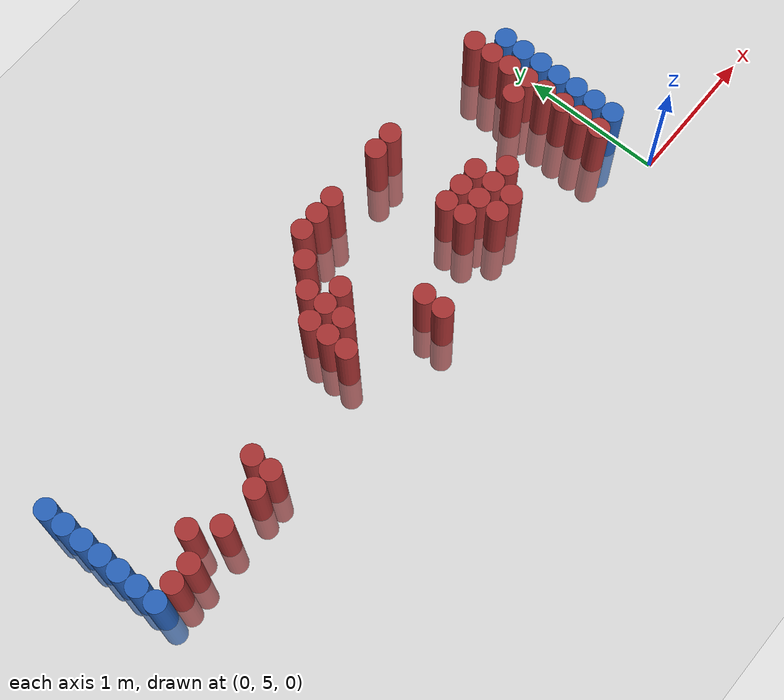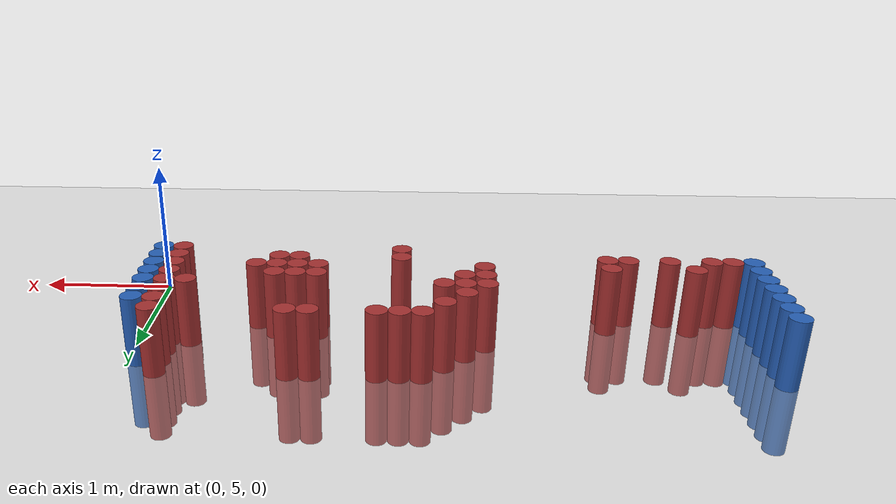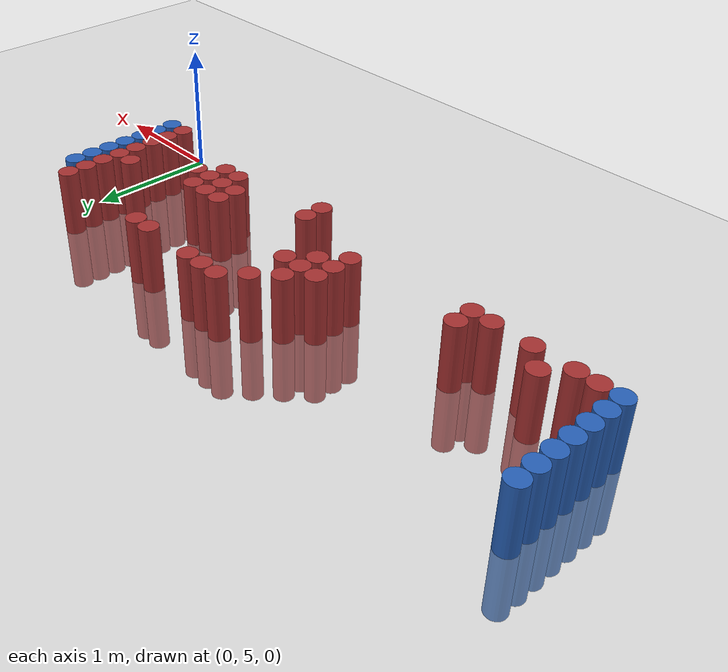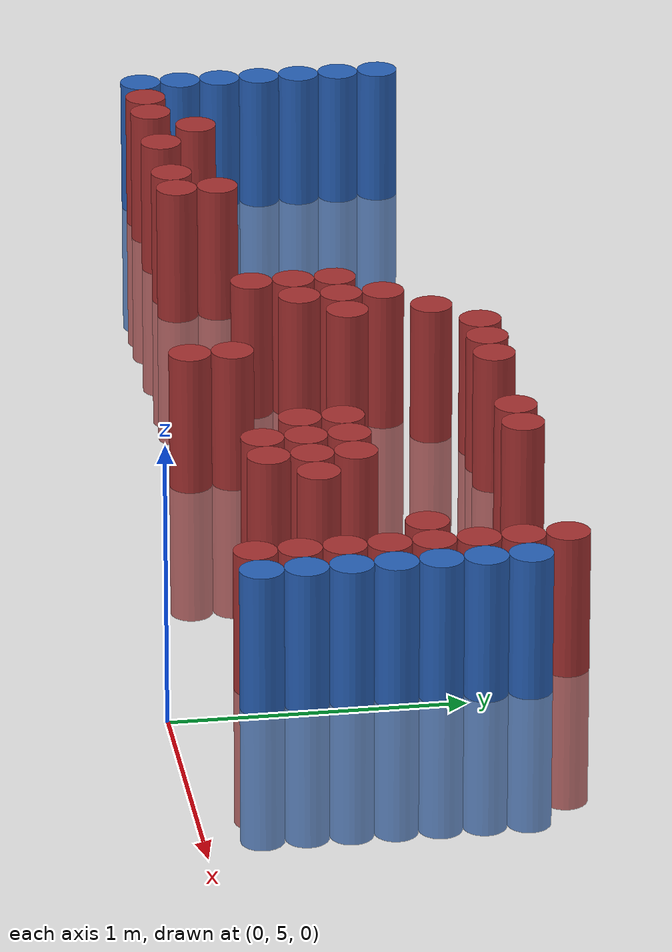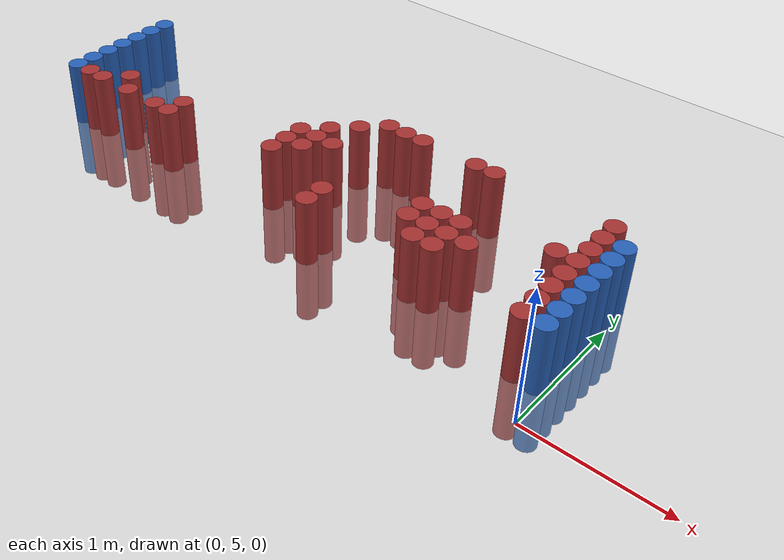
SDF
<sdf version="1.6">
 <world name="default">
  <model name="ground_plane">
   <static>1</static>
   <link name="link">
    <collision name="collision">
     <geometry><plane><normal>0 0 1</normal><size>100 100</size></plane></geometry>
     <surface><friction><ode><mu>100</mu><mu2>50</mu2></ode></friction></surface>
    </collision>
    <visual name="visual">
     <cast_shadows>0</cast_shadows>
     <geometry><plane><normal>0 0 1</normal><size>100 100</size></plane></geometry>
     <material>
      <script><uri>file://media/materials/scripts/gazebo.material</uri><name>Gazebo/Grey</name></script>
     </material>
    </visual>
   </link>
  </model>
  <model name="unit_cylinder_98">
   <static>1</static>
   <pose>-4.425000 5.475000 0.000000 0.000000 0.000000 0.000000</pose>
   <link name="link">
    <inertial>
     <mass>1</mass>
     <inertia><ixx>0.145833</ixx><ixy>0</ixy><ixz>0</ixz><iyy>0.145833</iyy><iyz>0</iyz><izz>0.125</izz></inertia>
    </inertial>
    <collision name="collision">
     <geometry><cylinder><radius>0.075000</radius><length>1</length></cylinder></geometry>
    </collision>
    <visual name="visual">
     <geometry><cylinder><radius>0.075000</radius><length>1</length></cylinder></geometry>
     <material>
      <ambient>0.152000 0.379000 0.720000 1</ambient>
      <diffuse>0.152000 0.379000 0.720000 1</diffuse>
     </material>
     <material>
      <script><name>Gazebo/Grey</name><uri>file://media/materials/scripts/gazebo.material</uri></script>
     </material>
    </visual>
   </link>
  </model>
  <model name="unit_cylinder_99">
   <static>1</static>
   <pose>-4.425000 5.625000 0.000000 0.000000 0.000000 0.000000</pose>
   <link name="link">
    <inertial>
     <mass>1</mass>
     <inertia><ixx>0.145833</ixx><ixy>0</ixy><ixz>0</ixz><iyy>0.145833</iyy><iyz>0</iyz><izz>0.125</izz></inertia>
    </inertial>
    <collision name="collision">
     <geometry><cylinder><radius>0.075000</radius><length>1</length></cylinder></geometry>
    </collision>
    <visual name="visual">
     <geometry><cylinder><radius>0.075000</radius><length>1</length></cylinder></geometry>
     <material>
      <ambient>0.152000 0.379000 0.720000 1</ambient>
      <diffuse>0.152000 0.379000 0.720000 1</diffuse>
     </material>
     <material>
      <script><name>Gazebo/Grey</name><uri>file://media/materials/scripts/gazebo.material</uri></script>
     </material>
    </visual>
   </link>
  </model>
  <model name="unit_cylinder_100">
   <static>1</static>
   <pose>-4.425000 5.775000 0.000000 0.000000 0.000000 0.000000</pose>
   <link name="link">
    <inertial>
     <mass>1</mass>
     <inertia><ixx>0.145833</ixx><ixy>0</ixy><ixz>0</ixz><iyy>0.145833</iyy><iyz>0</iyz><izz>0.125</izz></inertia>
    </inertial>
    <collision name="collision">
     <geometry><cylinder><radius>0.075000</radius><length>1</length></cylinder></geometry>
    </collision>
    <visual name="visual">
     <geometry><cylinder><radius>0.075000</radius><length>1</length></cylinder></geometry>
     <material>
      <ambient>0.152000 0.379000 0.720000 1</ambient>
      <diffuse>0.152000 0.379000 0.720000 1</diffuse>
     </material>
     <material>
      <script><name>Gazebo/Grey</name><uri>file://media/materials/scripts/gazebo.material</uri></script>
     </material>
    </visual>
   </link>
  </model>
  <model name="unit_cylinder_101">
   <static>1</static>
   <pose>-4.425000 5.925000 0.000000 0.000000 0.000000 0.000000</pose>
   <link name="link">
    <inertial>
     <mass>1</mass>
     <inertia><ixx>0.145833</ixx><ixy>0</ixy><ixz>0</ixz><iyy>0.145833</iyy><iyz>0</iyz><izz>0.125</izz></inertia>
    </inertial>
    <collision name="collision">
     <geometry><cylinder><radius>0.075000</radius><length>1</length></cylinder></geometry>
    </collision>
    <visual name="visual">
     <geometry><cylinder><radius>0.075000</radius><length>1</length></cylinder></geometry>
     <material>
      <ambient>0.152000 0.379000 0.720000 1</ambient>
      <diffuse>0.152000 0.379000 0.720000 1</diffuse>
     </material>
     <material>
      <script><name>Gazebo/Grey</name><uri>file://media/materials/scripts/gazebo.material</uri></script>
     </material>
    </visual>
   </link>
  </model>
  <model name="unit_cylinder_102">
   <static>1</static>
   <pose>-4.425000 6.075000 0.000000 0.000000 0.000000 0.000000</pose>
   <link name="link">
    <inertial>
     <mass>1</mass>
     <inertia><ixx>0.145833</ixx><ixy>0</ixy><ixz>0</ixz><iyy>0.145833</iyy><iyz>0</iyz><izz>0.125</izz></inertia>
    </inertial>
    <collision name="collision">
     <geometry><cylinder><radius>0.075000</radius><length>1</length></cylinder></geometry>
    </collision>
    <visual name="visual">
     <geometry><cylinder><radius>0.075000</radius><length>1</length></cylinder></geometry>
     <material>
      <ambient>0.152000 0.379000 0.720000 1</ambient>
      <diffuse>0.152000 0.379000 0.720000 1</diffuse>
     </material>
     <material>
      <script><name>Gazebo/Grey</name><uri>file://media/materials/scripts/gazebo.material</uri></script>
     </material>
    </visual>
   </link>
  </model>
  <model name="unit_cylinder_103">
   <static>1</static>
   <pose>-4.425000 6.225000 0.000000 0.000000 0.000000 0.000000</pose>
   <link name="link">
    <inertial>
     <mass>1</mass>
     <inertia><ixx>0.145833</ixx><ixy>0</ixy><ixz>0</ixz><iyy>0.145833</iyy><iyz>0</iyz><izz>0.125</izz></inertia>
    </inertial>
    <collision name="collision">
     <geometry><cylinder><radius>0.075000</radius><length>1</length></cylinder></geometry>
    </collision>
    <visual name="visual">
     <geometry><cylinder><radius>0.075000</radius><length>1</length></cylinder></geometry>
     <material>
      <ambient>0.152000 0.379000 0.720000 1</ambient>
      <diffuse>0.152000 0.379000 0.720000 1</diffuse>
     </material>
     <material>
      <script><name>Gazebo/Grey</name><uri>file://media/materials/scripts/gazebo.material</uri></script>
     </material>
    </visual>
   </link>
  </model>
  <model name="unit_cylinder_104">
   <static>1</static>
   <pose>-4.425000 6.375000 0.000000 0.000000 0.000000 0.000000</pose>
   <link name="link">
    <inertial>
     <mass>1</mass>
     <inertia><ixx>0.145833</ixx><ixy>0</ixy><ixz>0</ixz><iyy>0.145833</iyy><iyz>0</iyz><izz>0.125</izz></inertia>
    </inertial>
    <collision name="collision">
     <geometry><cylinder><radius>0.075000</radius><length>1</length></cylinder></geometry>
    </collision>
    <visual name="visual">
     <geometry><cylinder><radius>0.075000</radius><length>1</length></cylinder></geometry>
     <material>
      <ambient>0.152000 0.379000 0.720000 1</ambient>
      <diffuse>0.152000 0.379000 0.720000 1</diffuse>
     </material>
     <material>
      <script><name>Gazebo/Grey</name><uri>file://media/materials/scripts/gazebo.material</uri></script>
     </material>
    </visual>
   </link>
  </model>
  <model name="unit_cylinder_128">
   <static>1</static>
   <pose>-4.275000 5.475000 0.000000 0.000000 0.000000 0.000000</pose>
   <link name="link">
    <inertial>
     <mass>1</mass>
     <inertia><ixx>0.145833</ixx><ixy>0</ixy><ixz>0</ixz><iyy>0.145833</iyy><iyz>0</iyz><izz>0.125</izz></inertia>
    </inertial>
    <collision name="collision">
     <geometry><cylinder><radius>0.075000</radius><length>1</length></cylinder></geometry>
    </collision>
    <visual name="visual">
     <geometry><cylinder><radius>0.075000</radius><length>1</length></cylinder></geometry>
     <material>
      <ambient>0.648000 0.192000 0.192000 1</ambient>
      <diffuse>0.648000 0.192000 0.192000 1</diffuse>
     </material>
     <material>
      <script><name>Gazebo/Grey</name><uri>file://media/materials/scripts/gazebo.material</uri></script>
     </material>
    </visual>
   </link>
  </model>
  <model name="unit_cylinder_142">
   <static>1</static>
   <pose>-4.125000 5.475000 0.000000 0.000000 0.000000 0.000000</pose>
   <link name="link">
    <inertial>
     <mass>1</mass>
     <inertia><ixx>0.145833</ixx><ixy>0</ixy><ixz>0</ixz><iyy>0.145833</iyy><iyz>0</iyz><izz>0.125</izz></inertia>
    </inertial>
    <collision name="collision">
     <geometry><cylinder><radius>0.075000</radius><length>1</length></cylinder></geometry>
    </collision>
    <visual name="visual">
     <geometry><cylinder><radius>0.075000</radius><length>1</length></cylinder></geometry>
     <material>
      <ambient>0.648000 0.192000 0.192000 1</ambient>
      <diffuse>0.648000 0.192000 0.192000 1</diffuse>
     </material>
     <material>
      <script><name>Gazebo/Grey</name><uri>file://media/materials/scripts/gazebo.material</uri></script>
     </material>
    </visual>
   </link>
  </model>
  <model name="unit_cylinder_150">
   <static>1</static>
   <pose>-3.975000 5.625000 0.000000 0.000000 0.000000 0.000000</pose>
   <link name="link">
    <inertial>
     <mass>1</mass>
     <inertia><ixx>0.145833</ixx><ixy>0</ixy><ixz>0</ixz><iyy>0.145833</iyy><iyz>0</iyz><izz>0.125</izz></inertia>
    </inertial>
    <collision name="collision">
     <geometry><cylinder><radius>0.075000</radius><length>1</length></cylinder></geometry>
    </collision>
    <visual name="visual">
     <geometry><cylinder><radius>0.075000</radius><length>1</length></cylinder></geometry>
     <material>
      <ambient>0.648000 0.192000 0.192000 1</ambient>
      <diffuse>0.648000 0.192000 0.192000 1</diffuse>
     </material>
     <material>
      <script><name>Gazebo/Grey</name><uri>file://media/materials/scripts/gazebo.material</uri></script>
     </material>
    </visual>
   </link>
  </model>
  <model name="unit_cylinder_155">
   <static>1</static>
   <pose>-3.825000 5.475000 0.000000 0.000000 0.000000 0.000000</pose>
   <link name="link">
    <inertial>
     <mass>1</mass>
     <inertia><ixx>0.145833</ixx><ixy>0</ixy><ixz>0</ixz><iyy>0.145833</iyy><iyz>0</iyz><izz>0.125</izz></inertia>
    </inertial>
    <collision name="collision">
     <geometry><cylinder><radius>0.075000</radius><length>1</length></cylinder></geometry>
    </collision>
    <visual name="visual">
     <geometry><cylinder><radius>0.075000</radius><length>1</length></cylinder></geometry>
     <material>
      <ambient>0.648000 0.192000 0.192000 1</ambient>
      <diffuse>0.648000 0.192000 0.192000 1</diffuse>
     </material>
     <material>
      <script><name>Gazebo/Grey</name><uri>file://media/materials/scripts/gazebo.material</uri></script>
     </material>
    </visual>
   </link>
  </model>
  <model name="unit_cylinder_172">
   <static>1</static>
   <pose>-3.525000 5.475000 0.000000 0.000000 0.000000 0.000000</pose>
   <link name="link">
    <inertial>
     <mass>1</mass>
     <inertia><ixx>0.145833</ixx><ixy>0</ixy><ixz>0</ixz><iyy>0.145833</iyy><iyz>0</iyz><izz>0.125</izz></inertia>
    </inertial>
    <collision name="collision">
     <geometry><cylinder><radius>0.075000</radius><length>1</length></cylinder></geometry>
    </collision>
    <visual name="visual">
     <geometry><cylinder><radius>0.075000</radius><length>1</length></cylinder></geometry>
     <material>
      <ambient>0.648000 0.192000 0.192000 1</ambient>
      <diffuse>0.648000 0.192000 0.192000 1</diffuse>
     </material>
     <material>
      <script><name>Gazebo/Grey</name><uri>file://media/materials/scripts/gazebo.material</uri></script>
     </material>
    </visual>
   </link>
  </model>
  <model name="unit_cylinder_181">
   <static>1</static>
   <pose>-3.375000 5.475000 0.000000 0.000000 0.000000 0.000000</pose>
   <link name="link">
    <inertial>
     <mass>1</mass>
     <inertia><ixx>0.145833</ixx><ixy>0</ixy><ixz>0</ixz><iyy>0.145833</iyy><iyz>0</iyz><izz>0.125</izz></inertia>
    </inertial>
    <collision name="collision">
     <geometry><cylinder><radius>0.075000</radius><length>1</length></cylinder></geometry>
    </collision>
    <visual name="visual">
     <geometry><cylinder><radius>0.075000</radius><length>1</length></cylinder></geometry>
     <material>
      <ambient>0.648000 0.192000 0.192000 1</ambient>
      <diffuse>0.648000 0.192000 0.192000 1</diffuse>
     </material>
     <material>
      <script><name>Gazebo/Grey</name><uri>file://media/materials/scripts/gazebo.material</uri></script>
     </material>
    </visual>
   </link>
  </model>
  <model name="unit_cylinder_182">
   <static>1</static>
   <pose>-3.375000 5.625000 0.000000 0.000000 0.000000 0.000000</pose>
   <link name="link">
    <inertial>
     <mass>1</mass>
     <inertia><ixx>0.145833</ixx><ixy>0</ixy><ixz>0</ixz><iyy>0.145833</iyy><iyz>0</iyz><izz>0.125</izz></inertia>
    </inertial>
    <collision name="collision">
     <geometry><cylinder><radius>0.075000</radius><length>1</length></cylinder></geometry>
    </collision>
    <visual name="visual">
     <geometry><cylinder><radius>0.075000</radius><length>1</length></cylinder></geometry>
     <material>
      <ambient>0.648000 0.192000 0.192000 1</ambient>
      <diffuse>0.648000 0.192000 0.192000 1</diffuse>
     </material>
     <material>
      <script><name>Gazebo/Grey</name><uri>file://media/materials/scripts/gazebo.material</uri></script>
     </material>
    </visual>
   </link>
  </model>
  <model name="unit_cylinder_188">
   <static>1</static>
   <pose>-2.475000 5.625000 0.000000 0.000000 0.000000 0.000000</pose>
   <link name="link">
    <inertial>
     <mass>1</mass>
     <inertia><ixx>0.145833</ixx><ixy>0</ixy><ixz>0</ixz><iyy>0.145833</iyy><iyz>0</iyz><izz>0.125</izz></inertia>
    </inertial>
    <collision name="collision">
     <geometry><cylinder><radius>0.075000</radius><length>1</length></cylinder></geometry>
    </collision>
    <visual name="visual">
     <geometry><cylinder><radius>0.075000</radius><length>1</length></cylinder></geometry>
     <material>
      <ambient>0.648000 0.192000 0.192000 1</ambient>
      <diffuse>0.648000 0.192000 0.192000 1</diffuse>
     </material>
     <material>
      <script><name>Gazebo/Grey</name><uri>file://media/materials/scripts/gazebo.material</uri></script>
     </material>
    </visual>
   </link>
  </model>
  <model name="unit_cylinder_189">
   <static>1</static>
   <pose>-2.475000 5.775000 0.000000 0.000000 0.000000 0.000000</pose>
   <link name="link">
    <inertial>
     <mass>1</mass>
     <inertia><ixx>0.145833</ixx><ixy>0</ixy><ixz>0</ixz><iyy>0.145833</iyy><iyz>0</iyz><izz>0.125</izz></inertia>
    </inertial>
    <collision name="collision">
     <geometry><cylinder><radius>0.075000</radius><length>1</length></cylinder></geometry>
    </collision>
    <visual name="visual">
     <geometry><cylinder><radius>0.075000</radius><length>1</length></cylinder></geometry>
     <material>
      <ambient>0.648000 0.192000 0.192000 1</ambient>
      <diffuse>0.648000 0.192000 0.192000 1</diffuse>
     </material>
     <material>
      <script><name>Gazebo/Grey</name><uri>file://media/materials/scripts/gazebo.material</uri></script>
     </material>
    </visual>
   </link>
  </model>
  <model name="unit_cylinder_190">
   <static>1</static>
   <pose>-2.475000 5.925000 0.000000 0.000000 0.000000 0.000000</pose>
   <link name="link">
    <inertial>
     <mass>1</mass>
     <inertia><ixx>0.145833</ixx><ixy>0</ixy><ixz>0</ixz><iyy>0.145833</iyy><iyz>0</iyz><izz>0.125</izz></inertia>
    </inertial>
    <collision name="collision">
     <geometry><cylinder><radius>0.075000</radius><length>1</length></cylinder></geometry>
    </collision>
    <visual name="visual">
     <geometry><cylinder><radius>0.075000</radius><length>1</length></cylinder></geometry>
     <material>
      <ambient>0.648000 0.192000 0.192000 1</ambient>
      <diffuse>0.648000 0.192000 0.192000 1</diffuse>
     </material>
     <material>
      <script><name>Gazebo/Grey</name><uri>file://media/materials/scripts/gazebo.material</uri></script>
     </material>
    </visual>
   </link>
  </model>
  <model name="unit_cylinder_191">
   <static>1</static>
   <pose>-2.325000 5.775000 0.000000 0.000000 0.000000 0.000000</pose>
   <link name="link">
    <inertial>
     <mass>1</mass>
     <inertia><ixx>0.145833</ixx><ixy>0</ixy><ixz>0</ixz><iyy>0.145833</iyy><iyz>0</iyz><izz>0.125</izz></inertia>
    </inertial>
    <collision name="collision">
     <geometry><cylinder><radius>0.075000</radius><length>1</length></cylinder></geometry>
    </collision>
    <visual name="visual">
     <geometry><cylinder><radius>0.075000</radius><length>1</length></cylinder></geometry>
     <material>
      <ambient>0.648000 0.192000 0.192000 1</ambient>
      <diffuse>0.648000 0.192000 0.192000 1</diffuse>
     </material>
     <material>
      <script><name>Gazebo/Grey</name><uri>file://media/materials/scripts/gazebo.material</uri></script>
     </material>
    </visual>
   </link>
  </model>
  <model name="unit_cylinder_192">
   <static>1</static>
   <pose>-2.325000 5.925000 0.000000 0.000000 0.000000 0.000000</pose>
   <link name="link">
    <inertial>
     <mass>1</mass>
     <inertia><ixx>0.145833</ixx><ixy>0</ixy><ixz>0</ixz><iyy>0.145833</iyy><iyz>0</iyz><izz>0.125</izz></inertia>
    </inertial>
    <collision name="collision">
     <geometry><cylinder><radius>0.075000</radius><length>1</length></cylinder></geometry>
    </collision>
    <visual name="visual">
     <geometry><cylinder><radius>0.075000</radius><length>1</length></cylinder></geometry>
     <material>
      <ambient>0.648000 0.192000 0.192000 1</ambient>
      <diffuse>0.648000 0.192000 0.192000 1</diffuse>
     </material>
     <material>
      <script><name>Gazebo/Grey</name><uri>file://media/materials/scripts/gazebo.material</uri></script>
     </material>
    </visual>
   </link>
  </model>
  <model name="unit_cylinder_193">
   <static>1</static>
   <pose>-2.325000 6.075000 0.000000 0.000000 0.000000 0.000000</pose>
   <link name="link">
    <inertial>
     <mass>1</mass>
     <inertia><ixx>0.145833</ixx><ixy>0</ixy><ixz>0</ixz><iyy>0.145833</iyy><iyz>0</iyz><izz>0.125</izz></inertia>
    </inertial>
    <collision name="collision">
     <geometry><cylinder><radius>0.075000</radius><length>1</length></cylinder></geometry>
    </collision>
    <visual name="visual">
     <geometry><cylinder><radius>0.075000</radius><length>1</length></cylinder></geometry>
     <material>
      <ambient>0.648000 0.192000 0.192000 1</ambient>
      <diffuse>0.648000 0.192000 0.192000 1</diffuse>
     </material>
     <material>
      <script><name>Gazebo/Grey</name><uri>file://media/materials/scripts/gazebo.material</uri></script>
     </material>
    </visual>
   </link>
  </model>
  <model name="unit_cylinder_195">
   <static>1</static>
   <pose>-2.175000 5.925000 0.000000 0.000000 0.000000 0.000000</pose>
   <link name="link">
    <inertial>
     <mass>1</mass>
     <inertia><ixx>0.145833</ixx><ixy>0</ixy><ixz>0</ixz><iyy>0.145833</iyy><iyz>0</iyz><izz>0.125</izz></inertia>
    </inertial>
    <collision name="collision">
     <geometry><cylinder><radius>0.075000</radius><length>1</length></cylinder></geometry>
    </collision>
    <visual name="visual">
     <geometry><cylinder><radius>0.075000</radius><length>1</length></cylinder></geometry>
     <material>
      <ambient>0.648000 0.192000 0.192000 1</ambient>
      <diffuse>0.648000 0.192000 0.192000 1</diffuse>
     </material>
     <material>
      <script><name>Gazebo/Grey</name><uri>file://media/materials/scripts/gazebo.material</uri></script>
     </material>
    </visual>
   </link>
  </model>
  <model name="unit_cylinder_196">
   <static>1</static>
   <pose>-2.175000 6.225000 0.000000 0.000000 0.000000 0.000000</pose>
   <link name="link">
    <inertial>
     <mass>1</mass>
     <inertia><ixx>0.145833</ixx><ixy>0</ixy><ixz>0</ixz><iyy>0.145833</iyy><iyz>0</iyz><izz>0.125</izz></inertia>
    </inertial>
    <collision name="collision">
     <geometry><cylinder><radius>0.075000</radius><length>1</length></cylinder></geometry>
    </collision>
    <visual name="visual">
     <geometry><cylinder><radius>0.075000</radius><length>1</length></cylinder></geometry>
     <material>
      <ambient>0.648000 0.192000 0.192000 1</ambient>
      <diffuse>0.648000 0.192000 0.192000 1</diffuse>
     </material>
     <material>
      <script><name>Gazebo/Grey</name><uri>file://media/materials/scripts/gazebo.material</uri></script>
     </material>
    </visual>
   </link>
  </model>
  <model name="unit_cylinder_203">
   <static>1</static>
   <pose>-2.025000 6.375000 0.000000 0.000000 0.000000 0.000000</pose>
   <link name="link">
    <inertial>
     <mass>1</mass>
     <inertia><ixx>0.145833</ixx><ixy>0</ixy><ixz>0</ixz><iyy>0.145833</iyy><iyz>0</iyz><izz>0.125</izz></inertia>
    </inertial>
    <collision name="collision">
     <geometry><cylinder><radius>0.075000</radius><length>1</length></cylinder></geometry>
    </collision>
    <visual name="visual">
     <geometry><cylinder><radius>0.075000</radius><length>1</length></cylinder></geometry>
     <material>
      <ambient>0.648000 0.192000 0.192000 1</ambient>
      <diffuse>0.648000 0.192000 0.192000 1</diffuse>
     </material>
     <material>
      <script><name>Gazebo/Grey</name><uri>file://media/materials/scripts/gazebo.material</uri></script>
     </material>
    </visual>
   </link>
  </model>
  <model name="unit_cylinder_208">
   <static>1</static>
   <pose>-1.875000 5.325000 0.000000 0.000000 0.000000 0.000000</pose>
   <link name="link">
    <inertial>
     <mass>1</mass>
     <inertia><ixx>0.145833</ixx><ixy>0</ixy><ixz>0</ixz><iyy>0.145833</iyy><iyz>0</iyz><izz>0.125</izz></inertia>
    </inertial>
    <collision name="collision">
     <geometry><cylinder><radius>0.075000</radius><length>1</length></cylinder></geometry>
    </collision>
    <visual name="visual">
     <geometry><cylinder><radius>0.075000</radius><length>1</length></cylinder></geometry>
     <material>
      <ambient>0.648000 0.192000 0.192000 1</ambient>
      <diffuse>0.648000 0.192000 0.192000 1</diffuse>
     </material>
     <material>
      <script><name>Gazebo/Grey</name><uri>file://media/materials/scripts/gazebo.material</uri></script>
     </material>
    </visual>
   </link>
  </model>
  <model name="unit_cylinder_209">
   <static>1</static>
   <pose>-1.875000 5.475000 0.000000 0.000000 0.000000 0.000000</pose>
   <link name="link">
    <inertial>
     <mass>1</mass>
     <inertia><ixx>0.145833</ixx><ixy>0</ixy><ixz>0</ixz><iyy>0.145833</iyy><iyz>0</iyz><izz>0.125</izz></inertia>
    </inertial>
    <collision name="collision">
     <geometry><cylinder><radius>0.075000</radius><length>1</length></cylinder></geometry>
    </collision>
    <visual name="visual">
     <geometry><cylinder><radius>0.075000</radius><length>1</length></cylinder></geometry>
     <material>
      <ambient>0.648000 0.192000 0.192000 1</ambient>
      <diffuse>0.648000 0.192000 0.192000 1</diffuse>
     </material>
     <material>
      <script><name>Gazebo/Grey</name><uri>file://media/materials/scripts/gazebo.material</uri></script>
     </material>
    </visual>
   </link>
  </model>
  <model name="unit_cylinder_210">
   <static>1</static>
   <pose>-1.875000 6.375000 0.000000 0.000000 0.000000 0.000000</pose>
   <link name="link">
    <inertial>
     <mass>1</mass>
     <inertia><ixx>0.145833</ixx><ixy>0</ixy><ixz>0</ixz><iyy>0.145833</iyy><iyz>0</iyz><izz>0.125</izz></inertia>
    </inertial>
    <collision name="collision">
     <geometry><cylinder><radius>0.075000</radius><length>1</length></cylinder></geometry>
    </collision>
    <visual name="visual">
     <geometry><cylinder><radius>0.075000</radius><length>1</length></cylinder></geometry>
     <material>
      <ambient>0.648000 0.192000 0.192000 1</ambient>
      <diffuse>0.648000 0.192000 0.192000 1</diffuse>
     </material>
     <material>
      <script><name>Gazebo/Grey</name><uri>file://media/materials/scripts/gazebo.material</uri></script>
     </material>
    </visual>
   </link>
  </model>
  <model name="unit_cylinder_215">
   <static>1</static>
   <pose>-1.725000 6.375000 0.000000 0.000000 0.000000 0.000000</pose>
   <link name="link">
    <inertial>
     <mass>1</mass>
     <inertia><ixx>0.145833</ixx><ixy>0</ixy><ixz>0</ixz><iyy>0.145833</iyy><iyz>0</iyz><izz>0.125</izz></inertia>
    </inertial>
    <collision name="collision">
     <geometry><cylinder><radius>0.075000</radius><length>1</length></cylinder></geometry>
    </collision>
    <visual name="visual">
     <geometry><cylinder><radius>0.075000</radius><length>1</length></cylinder></geometry>
     <material>
      <ambient>0.648000 0.192000 0.192000 1</ambient>
      <diffuse>0.648000 0.192000 0.192000 1</diffuse>
     </material>
     <material>
      <script><name>Gazebo/Grey</name><uri>file://media/materials/scripts/gazebo.material</uri></script>
     </material>
    </visual>
   </link>
  </model>
  <model name="unit_cylinder_226">
   <static>1</static>
   <pose>-1.275000 5.625000 0.000000 0.000000 0.000000 0.000000</pose>
   <link name="link">
    <inertial>
     <mass>1</mass>
     <inertia><ixx>0.145833</ixx><ixy>0</ixy><ixz>0</ixz><iyy>0.145833</iyy><iyz>0</iyz><izz>0.125</izz></inertia>
    </inertial>
    <collision name="collision">
     <geometry><cylinder><radius>0.075000</radius><length>1</length></cylinder></geometry>
    </collision>
    <visual name="visual">
     <geometry><cylinder><radius>0.075000</radius><length>1</length></cylinder></geometry>
     <material>
      <ambient>0.648000 0.192000 0.192000 1</ambient>
      <diffuse>0.648000 0.192000 0.192000 1</diffuse>
     </material>
     <material>
      <script><name>Gazebo/Grey</name><uri>file://media/materials/scripts/gazebo.material</uri></script>
     </material>
    </visual>
   </link>
  </model>
  <model name="unit_cylinder_227">
   <static>1</static>
   <pose>-1.275000 5.775000 0.000000 0.000000 0.000000 0.000000</pose>
   <link name="link">
    <inertial>
     <mass>1</mass>
     <inertia><ixx>0.145833</ixx><ixy>0</ixy><ixz>0</ixz><iyy>0.145833</iyy><iyz>0</iyz><izz>0.125</izz></inertia>
    </inertial>
    <collision name="collision">
     <geometry><cylinder><radius>0.075000</radius><length>1</length></cylinder></geometry>
    </collision>
    <visual name="visual">
     <geometry><cylinder><radius>0.075000</radius><length>1</length></cylinder></geometry>
     <material>
      <ambient>0.648000 0.192000 0.192000 1</ambient>
      <diffuse>0.648000 0.192000 0.192000 1</diffuse>
     </material>
     <material>
      <script><name>Gazebo/Grey</name><uri>file://media/materials/scripts/gazebo.material</uri></script>
     </material>
    </visual>
   </link>
  </model>
  <model name="unit_cylinder_228">
   <static>1</static>
   <pose>-1.275000 6.375000 0.000000 0.000000 0.000000 0.000000</pose>
   <link name="link">
    <inertial>
     <mass>1</mass>
     <inertia><ixx>0.145833</ixx><ixy>0</ixy><ixz>0</ixz><iyy>0.145833</iyy><iyz>0</iyz><izz>0.125</izz></inertia>
    </inertial>
    <collision name="collision">
     <geometry><cylinder><radius>0.075000</radius><length>1</length></cylinder></geometry>
    </collision>
    <visual name="visual">
     <geometry><cylinder><radius>0.075000</radius><length>1</length></cylinder></geometry>
     <material>
      <ambient>0.648000 0.192000 0.192000 1</ambient>
      <diffuse>0.648000 0.192000 0.192000 1</diffuse>
     </material>
     <material>
      <script><name>Gazebo/Grey</name><uri>file://media/materials/scripts/gazebo.material</uri></script>
     </material>
    </visual>
   </link>
  </model>
  <model name="unit_cylinder_237">
   <static>1</static>
   <pose>-1.125000 5.475000 0.000000 0.000000 0.000000 0.000000</pose>
   <link name="link">
    <inertial>
     <mass>1</mass>
     <inertia><ixx>0.145833</ixx><ixy>0</ixy><ixz>0</ixz><iyy>0.145833</iyy><iyz>0</iyz><izz>0.125</izz></inertia>
    </inertial>
    <collision name="collision">
     <geometry><cylinder><radius>0.075000</radius><length>1</length></cylinder></geometry>
    </collision>
    <visual name="visual">
     <geometry><cylinder><radius>0.075000</radius><length>1</length></cylinder></geometry>
     <material>
      <ambient>0.648000 0.192000 0.192000 1</ambient>
      <diffuse>0.648000 0.192000 0.192000 1</diffuse>
     </material>
     <material>
      <script><name>Gazebo/Grey</name><uri>file://media/materials/scripts/gazebo.material</uri></script>
     </material>
    </visual>
   </link>
  </model>
  <model name="unit_cylinder_238">
   <static>1</static>
   <pose>-1.125000 5.625000 0.000000 0.000000 0.000000 0.000000</pose>
   <link name="link">
    <inertial>
     <mass>1</mass>
     <inertia><ixx>0.145833</ixx><ixy>0</ixy><ixz>0</ixz><iyy>0.145833</iyy><iyz>0</iyz><izz>0.125</izz></inertia>
    </inertial>
    <collision name="collision">
     <geometry><cylinder><radius>0.075000</radius><length>1</length></cylinder></geometry>
    </collision>
    <visual name="visual">
     <geometry><cylinder><radius>0.075000</radius><length>1</length></cylinder></geometry>
     <material>
      <ambient>0.648000 0.192000 0.192000 1</ambient>
      <diffuse>0.648000 0.192000 0.192000 1</diffuse>
     </material>
     <material>
      <script><name>Gazebo/Grey</name><uri>file://media/materials/scripts/gazebo.material</uri></script>
     </material>
    </visual>
   </link>
  </model>
  <model name="unit_cylinder_239">
   <static>1</static>
   <pose>-1.125000 5.775000 0.000000 0.000000 0.000000 0.000000</pose>
   <link name="link">
    <inertial>
     <mass>1</mass>
     <inertia><ixx>0.145833</ixx><ixy>0</ixy><ixz>0</ixz><iyy>0.145833</iyy><iyz>0</iyz><izz>0.125</izz></inertia>
    </inertial>
    <collision name="collision">
     <geometry><cylinder><radius>0.075000</radius><length>1</length></cylinder></geometry>
    </collision>
    <visual name="visual">
     <geometry><cylinder><radius>0.075000</radius><length>1</length></cylinder></geometry>
     <material>
      <ambient>0.648000 0.192000 0.192000 1</ambient>
      <diffuse>0.648000 0.192000 0.192000 1</diffuse>
     </material>
     <material>
      <script><name>Gazebo/Grey</name><uri>file://media/materials/scripts/gazebo.material</uri></script>
     </material>
    </visual>
   </link>
  </model>
  <model name="unit_cylinder_240">
   <static>1</static>
   <pose>-1.125000 6.375000 0.000000 0.000000 0.000000 0.000000</pose>
   <link name="link">
    <inertial>
     <mass>1</mass>
     <inertia><ixx>0.145833</ixx><ixy>0</ixy><ixz>0</ixz><iyy>0.145833</iyy><iyz>0</iyz><izz>0.125</izz></inertia>
    </inertial>
    <collision name="collision">
     <geometry><cylinder><radius>0.075000</radius><length>1</length></cylinder></geometry>
    </collision>
    <visual name="visual">
     <geometry><cylinder><radius>0.075000</radius><length>1</length></cylinder></geometry>
     <material>
      <ambient>0.648000 0.192000 0.192000 1</ambient>
      <diffuse>0.648000 0.192000 0.192000 1</diffuse>
     </material>
     <material>
      <script><name>Gazebo/Grey</name><uri>file://media/materials/scripts/gazebo.material</uri></script>
     </material>
    </visual>
   </link>
  </model>
  <model name="unit_cylinder_246">
   <static>1</static>
   <pose>-0.975000 5.475000 0.000000 0.000000 0.000000 0.000000</pose>
   <link name="link">
    <inertial>
     <mass>1</mass>
     <inertia><ixx>0.145833</ixx><ixy>0</ixy><ixz>0</ixz><iyy>0.145833</iyy><iyz>0</iyz><izz>0.125</izz></inertia>
    </inertial>
    <collision name="collision">
     <geometry><cylinder><radius>0.075000</radius><length>1</length></cylinder></geometry>
    </collision>
    <visual name="visual">
     <geometry><cylinder><radius>0.075000</radius><length>1</length></cylinder></geometry>
     <material>
      <ambient>0.648000 0.192000 0.192000 1</ambient>
      <diffuse>0.648000 0.192000 0.192000 1</diffuse>
     </material>
     <material>
      <script><name>Gazebo/Grey</name><uri>file://media/materials/scripts/gazebo.material</uri></script>
     </material>
    </visual>
   </link>
  </model>
  <model name="unit_cylinder_247">
   <static>1</static>
   <pose>-0.975000 5.625000 0.000000 0.000000 0.000000 0.000000</pose>
   <link name="link">
    <inertial>
     <mass>1</mass>
     <inertia><ixx>0.145833</ixx><ixy>0</ixy><ixz>0</ixz><iyy>0.145833</iyy><iyz>0</iyz><izz>0.125</izz></inertia>
    </inertial>
    <collision name="collision">
     <geometry><cylinder><radius>0.075000</radius><length>1</length></cylinder></geometry>
    </collision>
    <visual name="visual">
     <geometry><cylinder><radius>0.075000</radius><length>1</length></cylinder></geometry>
     <material>
      <ambient>0.648000 0.192000 0.192000 1</ambient>
      <diffuse>0.648000 0.192000 0.192000 1</diffuse>
     </material>
     <material>
      <script><name>Gazebo/Grey</name><uri>file://media/materials/scripts/gazebo.material</uri></script>
     </material>
    </visual>
   </link>
  </model>
  <model name="unit_cylinder_248">
   <static>1</static>
   <pose>-0.975000 5.775000 0.000000 0.000000 0.000000 0.000000</pose>
   <link name="link">
    <inertial>
     <mass>1</mass>
     <inertia><ixx>0.145833</ixx><ixy>0</ixy><ixz>0</ixz><iyy>0.145833</iyy><iyz>0</iyz><izz>0.125</izz></inertia>
    </inertial>
    <collision name="collision">
     <geometry><cylinder><radius>0.075000</radius><length>1</length></cylinder></geometry>
    </collision>
    <visual name="visual">
     <geometry><cylinder><radius>0.075000</radius><length>1</length></cylinder></geometry>
     <material>
      <ambient>0.648000 0.192000 0.192000 1</ambient>
      <diffuse>0.648000 0.192000 0.192000 1</diffuse>
     </material>
     <material>
      <script><name>Gazebo/Grey</name><uri>file://media/materials/scripts/gazebo.material</uri></script>
     </material>
    </visual>
   </link>
  </model>
  <model name="unit_cylinder_250">
   <static>1</static>
   <pose>-0.825000 5.625000 0.000000 0.000000 0.000000 0.000000</pose>
   <link name="link">
    <inertial>
     <mass>1</mass>
     <inertia><ixx>0.145833</ixx><ixy>0</ixy><ixz>0</ixz><iyy>0.145833</iyy><iyz>0</iyz><izz>0.125</izz></inertia>
    </inertial>
    <collision name="collision">
     <geometry><cylinder><radius>0.075000</radius><length>1</length></cylinder></geometry>
    </collision>
    <visual name="visual">
     <geometry><cylinder><radius>0.075000</radius><length>1</length></cylinder></geometry>
     <material>
      <ambient>0.648000 0.192000 0.192000 1</ambient>
      <diffuse>0.648000 0.192000 0.192000 1</diffuse>
     </material>
     <material>
      <script><name>Gazebo/Grey</name><uri>file://media/materials/scripts/gazebo.material</uri></script>
     </material>
    </visual>
   </link>
  </model>
  <model name="unit_cylinder_261">
   <static>1</static>
   <pose>-0.375000 5.925000 0.000000 0.000000 0.000000 0.000000</pose>
   <link name="link">
    <inertial>
     <mass>1</mass>
     <inertia><ixx>0.145833</ixx><ixy>0</ixy><ixz>0</ixz><iyy>0.145833</iyy><iyz>0</iyz><izz>0.125</izz></inertia>
    </inertial>
    <collision name="collision">
     <geometry><cylinder><radius>0.075000</radius><length>1</length></cylinder></geometry>
    </collision>
    <visual name="visual">
     <geometry><cylinder><radius>0.075000</radius><length>1</length></cylinder></geometry>
     <material>
      <ambient>0.648000 0.192000 0.192000 1</ambient>
      <diffuse>0.648000 0.192000 0.192000 1</diffuse>
     </material>
     <material>
      <script><name>Gazebo/Grey</name><uri>file://media/materials/scripts/gazebo.material</uri></script>
     </material>
    </visual>
   </link>
  </model>
  <model name="unit_cylinder_272">
   <static>1</static>
   <pose>-0.225000 5.325000 0.000000 0.000000 0.000000 0.000000</pose>
   <link name="link">
    <inertial>
     <mass>1</mass>
     <inertia><ixx>0.145833</ixx><ixy>0</ixy><ixz>0</ixz><iyy>0.145833</iyy><iyz>0</iyz><izz>0.125</izz></inertia>
    </inertial>
    <collision name="collision">
     <geometry><cylinder><radius>0.075000</radius><length>1</length></cylinder></geometry>
    </collision>
    <visual name="visual">
     <geometry><cylinder><radius>0.075000</radius><length>1</length></cylinder></geometry>
     <material>
      <ambient>0.648000 0.192000 0.192000 1</ambient>
      <diffuse>0.648000 0.192000 0.192000 1</diffuse>
     </material>
     <material>
      <script><name>Gazebo/Grey</name><uri>file://media/materials/scripts/gazebo.material</uri></script>
     </material>
    </visual>
   </link>
  </model>
  <model name="unit_cylinder_273">
   <static>1</static>
   <pose>-0.225000 5.475000 0.000000 0.000000 0.000000 0.000000</pose>
   <link name="link">
    <inertial>
     <mass>1</mass>
     <inertia><ixx>0.145833</ixx><ixy>0</ixy><ixz>0</ixz><iyy>0.145833</iyy><iyz>0</iyz><izz>0.125</izz></inertia>
    </inertial>
    <collision name="collision">
     <geometry><cylinder><radius>0.075000</radius><length>1</length></cylinder></geometry>
    </collision>
    <visual name="visual">
     <geometry><cylinder><radius>0.075000</radius><length>1</length></cylinder></geometry>
     <material>
      <ambient>0.648000 0.192000 0.192000 1</ambient>
      <diffuse>0.648000 0.192000 0.192000 1</diffuse>
     </material>
     <material>
      <script><name>Gazebo/Grey</name><uri>file://media/materials/scripts/gazebo.material</uri></script>
     </material>
    </visual>
   </link>
  </model>
  <model name="unit_cylinder_274">
   <static>1</static>
   <pose>-0.225000 5.625000 0.000000 0.000000 0.000000 0.000000</pose>
   <link name="link">
    <inertial>
     <mass>1</mass>
     <inertia><ixx>0.145833</ixx><ixy>0</ixy><ixz>0</ixz><iyy>0.145833</iyy><iyz>0</iyz><izz>0.125</izz></inertia>
    </inertial>
    <collision name="collision">
     <geometry><cylinder><radius>0.075000</radius><length>1</length></cylinder></geometry>
    </collision>
    <visual name="visual">
     <geometry><cylinder><radius>0.075000</radius><length>1</length></cylinder></geometry>
     <material>
      <ambient>0.648000 0.192000 0.192000 1</ambient>
      <diffuse>0.648000 0.192000 0.192000 1</diffuse>
     </material>
     <material>
      <script><name>Gazebo/Grey</name><uri>file://media/materials/scripts/gazebo.material</uri></script>
     </material>
    </visual>
   </link>
  </model>
  <model name="unit_cylinder_275">
   <static>1</static>
   <pose>-0.225000 5.775000 0.000000 0.000000 0.000000 0.000000</pose>
   <link name="link">
    <inertial>
     <mass>1</mass>
     <inertia><ixx>0.145833</ixx><ixy>0</ixy><ixz>0</ixz><iyy>0.145833</iyy><iyz>0</iyz><izz>0.125</izz></inertia>
    </inertial>
    <collision name="collision">
     <geometry><cylinder><radius>0.075000</radius><length>1</length></cylinder></geometry>
    </collision>
    <visual name="visual">
     <geometry><cylinder><radius>0.075000</radius><length>1</length></cylinder></geometry>
     <material>
      <ambient>0.648000 0.192000 0.192000 1</ambient>
      <diffuse>0.648000 0.192000 0.192000 1</diffuse>
     </material>
     <material>
      <script><name>Gazebo/Grey</name><uri>file://media/materials/scripts/gazebo.material</uri></script>
     </material>
    </visual>
   </link>
  </model>
  <model name="unit_cylinder_276">
   <static>1</static>
   <pose>-0.225000 5.925000 0.000000 0.000000 0.000000 0.000000</pose>
   <link name="link">
    <inertial>
     <mass>1</mass>
     <inertia><ixx>0.145833</ixx><ixy>0</ixy><ixz>0</ixz><iyy>0.145833</iyy><iyz>0</iyz><izz>0.125</izz></inertia>
    </inertial>
    <collision name="collision">
     <geometry><cylinder><radius>0.075000</radius><length>1</length></cylinder></geometry>
    </collision>
    <visual name="visual">
     <geometry><cylinder><radius>0.075000</radius><length>1</length></cylinder></geometry>
     <material>
      <ambient>0.648000 0.192000 0.192000 1</ambient>
      <diffuse>0.648000 0.192000 0.192000 1</diffuse>
     </material>
     <material>
      <script><name>Gazebo/Grey</name><uri>file://media/materials/scripts/gazebo.material</uri></script>
     </material>
    </visual>
   </link>
  </model>
  <model name="unit_cylinder_277">
   <static>1</static>
   <pose>-0.225000 6.075000 0.000000 0.000000 0.000000 0.000000</pose>
   <link name="link">
    <inertial>
     <mass>1</mass>
     <inertia><ixx>0.145833</ixx><ixy>0</ixy><ixz>0</ixz><iyy>0.145833</iyy><iyz>0</iyz><izz>0.125</izz></inertia>
    </inertial>
    <collision name="collision">
     <geometry><cylinder><radius>0.075000</radius><length>1</length></cylinder></geometry>
    </collision>
    <visual name="visual">
     <geometry><cylinder><radius>0.075000</radius><length>1</length></cylinder></geometry>
     <material>
      <ambient>0.648000 0.192000 0.192000 1</ambient>
      <diffuse>0.648000 0.192000 0.192000 1</diffuse>
     </material>
     <material>
      <script><name>Gazebo/Grey</name><uri>file://media/materials/scripts/gazebo.material</uri></script>
     </material>
    </visual>
   </link>
  </model>
  <model name="unit_cylinder_278">
   <static>1</static>
   <pose>-0.225000 6.225000 0.000000 0.000000 0.000000 0.000000</pose>
   <link name="link">
    <inertial>
     <mass>1</mass>
     <inertia><ixx>0.145833</ixx><ixy>0</ixy><ixz>0</ixz><iyy>0.145833</iyy><iyz>0</iyz><izz>0.125</izz></inertia>
    </inertial>
    <collision name="collision">
     <geometry><cylinder><radius>0.075000</radius><length>1</length></cylinder></geometry>
    </collision>
    <visual name="visual">
     <geometry><cylinder><radius>0.075000</radius><length>1</length></cylinder></geometry>
     <material>
      <ambient>0.648000 0.192000 0.192000 1</ambient>
      <diffuse>0.648000 0.192000 0.192000 1</diffuse>
     </material>
     <material>
      <script><name>Gazebo/Grey</name><uri>file://media/materials/scripts/gazebo.material</uri></script>
     </material>
    </visual>
   </link>
  </model>
  <model name="unit_cylinder_279">
   <static>1</static>
   <pose>-0.225000 6.375000 0.000000 0.000000 0.000000 0.000000</pose>
   <link name="link">
    <inertial>
     <mass>1</mass>
     <inertia><ixx>0.145833</ixx><ixy>0</ixy><ixz>0</ixz><iyy>0.145833</iyy><iyz>0</iyz><izz>0.125</izz></inertia>
    </inertial>
    <collision name="collision">
     <geometry><cylinder><radius>0.075000</radius><length>1</length></cylinder></geometry>
    </collision>
    <visual name="visual">
     <geometry><cylinder><radius>0.075000</radius><length>1</length></cylinder></geometry>
     <material>
      <ambient>0.648000 0.192000 0.192000 1</ambient>
      <diffuse>0.648000 0.192000 0.192000 1</diffuse>
     </material>
     <material>
      <script><name>Gazebo/Grey</name><uri>file://media/materials/scripts/gazebo.material</uri></script>
     </material>
    </visual>
   </link>
  </model>
  <model name="unit_cylinder_295">
   <static>1</static>
   <pose>-0.075000 5.325000 0.000000 0.000000 0.000000 0.000000</pose>
   <link name="link">
    <inertial>
     <mass>1</mass>
     <inertia><ixx>0.145833</ixx><ixy>0</ixy><ixz>0</ixz><iyy>0.145833</iyy><iyz>0</iyz><izz>0.125</izz></inertia>
    </inertial>
    <collision name="collision">
     <geometry><cylinder><radius>0.075000</radius><length>1</length></cylinder></geometry>
    </collision>
    <visual name="visual">
     <geometry><cylinder><radius>0.075000</radius><length>1</length></cylinder></geometry>
     <material>
      <ambient>0.152000 0.379000 0.720000 1</ambient>
      <diffuse>0.152000 0.379000 0.720000 1</diffuse>
     </material>
     <material>
      <script><name>Gazebo/Grey</name><uri>file://media/materials/scripts/gazebo.material</uri></script>
     </material>
    </visual>
   </link>
  </model>
  <model name="unit_cylinder_296">
   <static>1</static>
   <pose>-0.075000 5.475000 0.000000 0.000000 0.000000 0.000000</pose>
   <link name="link">
    <inertial>
     <mass>1</mass>
     <inertia><ixx>0.145833</ixx><ixy>0</ixy><ixz>0</ixz><iyy>0.145833</iyy><iyz>0</iyz><izz>0.125</izz></inertia>
    </inertial>
    <collision name="collision">
     <geometry><cylinder><radius>0.075000</radius><length>1</length></cylinder></geometry>
    </collision>
    <visual name="visual">
     <geometry><cylinder><radius>0.075000</radius><length>1</length></cylinder></geometry>
     <material>
      <ambient>0.152000 0.379000 0.720000 1</ambient>
      <diffuse>0.152000 0.379000 0.720000 1</diffuse>
     </material>
     <material>
      <script><name>Gazebo/Grey</name><uri>file://media/materials/scripts/gazebo.material</uri></script>
     </material>
    </visual>
   </link>
  </model>
  <model name="unit_cylinder_297">
   <static>1</static>
   <pose>-0.075000 5.625000 0.000000 0.000000 0.000000 0.000000</pose>
   <link name="link">
    <inertial>
     <mass>1</mass>
     <inertia><ixx>0.145833</ixx><ixy>0</ixy><ixz>0</ixz><iyy>0.145833</iyy><iyz>0</iyz><izz>0.125</izz></inertia>
    </inertial>
    <collision name="collision">
     <geometry><cylinder><radius>0.075000</radius><length>1</length></cylinder></geometry>
    </collision>
    <visual name="visual">
     <geometry><cylinder><radius>0.075000</radius><length>1</length></cylinder></geometry>
     <material>
      <ambient>0.152000 0.379000 0.720000 1</ambient>
      <diffuse>0.152000 0.379000 0.720000 1</diffuse>
     </material>
     <material>
      <script><name>Gazebo/Grey</name><uri>file://media/materials/scripts/gazebo.material</uri></script>
     </material>
    </visual>
   </link>
  </model>
  <model name="unit_cylinder_298">
   <static>1</static>
   <pose>-0.075000 5.775000 0.000000 0.000000 0.000000 0.000000</pose>
   <link name="link">
    <inertial>
     <mass>1</mass>
     <inertia><ixx>0.145833</ixx><ixy>0</ixy><ixz>0</ixz><iyy>0.145833</iyy><iyz>0</iyz><izz>0.125</izz></inertia>
    </inertial>
    <collision name="collision">
     <geometry><cylinder><radius>0.075000</radius><length>1</length></cylinder></geometry>
    </collision>
    <visual name="visual">
     <geometry><cylinder><radius>0.075000</radius><length>1</length></cylinder></geometry>
     <material>
      <ambient>0.152000 0.379000 0.720000 1</ambient>
      <diffuse>0.152000 0.379000 0.720000 1</diffuse>
     </material>
     <material>
      <script><name>Gazebo/Grey</name><uri>file://media/materials/scripts/gazebo.material</uri></script>
     </material>
    </visual>
   </link>
  </model>
  <model name="unit_cylinder_299">
   <static>1</static>
   <pose>-0.075000 5.925000 0.000000 0.000000 0.000000 0.000000</pose>
   <link name="link">
    <inertial>
     <mass>1</mass>
     <inertia><ixx>0.145833</ixx><ixy>0</ixy><ixz>0</ixz><iyy>0.145833</iyy><iyz>0</iyz><izz>0.125</izz></inertia>
    </inertial>
    <collision name="collision">
     <geometry><cylinder><radius>0.075000</radius><length>1</length></cylinder></geometry>
    </collision>
    <visual name="visual">
     <geometry><cylinder><radius>0.075000</radius><length>1</length></cylinder></geometry>
     <material>
      <ambient>0.152000 0.379000 0.720000 1</ambient>
      <diffuse>0.152000 0.379000 0.720000 1</diffuse>
     </material>
     <material>
      <script><name>Gazebo/Grey</name><uri>file://media/materials/scripts/gazebo.material</uri></script>
     </material>
    </visual>
   </link>
  </model>
  <model name="unit_cylinder_300">
   <static>1</static>
   <pose>-0.075000 6.075000 0.000000 0.000000 0.000000 0.000000</pose>
   <link name="link">
    <inertial>
     <mass>1</mass>
     <inertia><ixx>0.145833</ixx><ixy>0</ixy><ixz>0</ixz><iyy>0.145833</iyy><iyz>0</iyz><izz>0.125</izz></inertia>
    </inertial>
    <collision name="collision">
     <geometry><cylinder><radius>0.075000</radius><length>1</length></cylinder></geometry>
    </collision>
    <visual name="visual">
     <geometry><cylinder><radius>0.075000</radius><length>1</length></cylinder></geometry>
     <material>
      <ambient>0.152000 0.379000 0.720000 1</ambient>
      <diffuse>0.152000 0.379000 0.720000 1</diffuse>
     </material>
     <material>
      <script><name>Gazebo/Grey</name><uri>file://media/materials/scripts/gazebo.material</uri></script>
     </material>
    </visual>
   </link>
  </model>
  <model name="unit_cylinder_301">
   <static>1</static>
   <pose>-0.075000 6.225000 0.000000 0.000000 0.000000 0.000000</pose>
   <link name="link">
    <inertial>
     <mass>1</mass>
     <inertia><ixx>0.145833</ixx><ixy>0</ixy><ixz>0</ixz><iyy>0.145833</iyy><iyz>0</iyz><izz>0.125</izz></inertia>
    </inertial>
    <collision name="collision">
     <geometry><cylinder><radius>0.075000</radius><length>1</length></cylinder></geometry>
    </collision>
    <visual name="visual">
     <geometry><cylinder><radius>0.075000</radius><length>1</length></cylinder></geometry>
     <material>
      <ambient>0.152000 0.379000 0.720000 1</ambient>
      <diffuse>0.152000 0.379000 0.720000 1</diffuse>
     </material>
     <material>
      <script><name>Gazebo/Grey</name><uri>file://media/materials/scripts/gazebo.material</uri></script>
     </material>
    </visual>
   </link>
  </model>
 </world>
</sdf>
